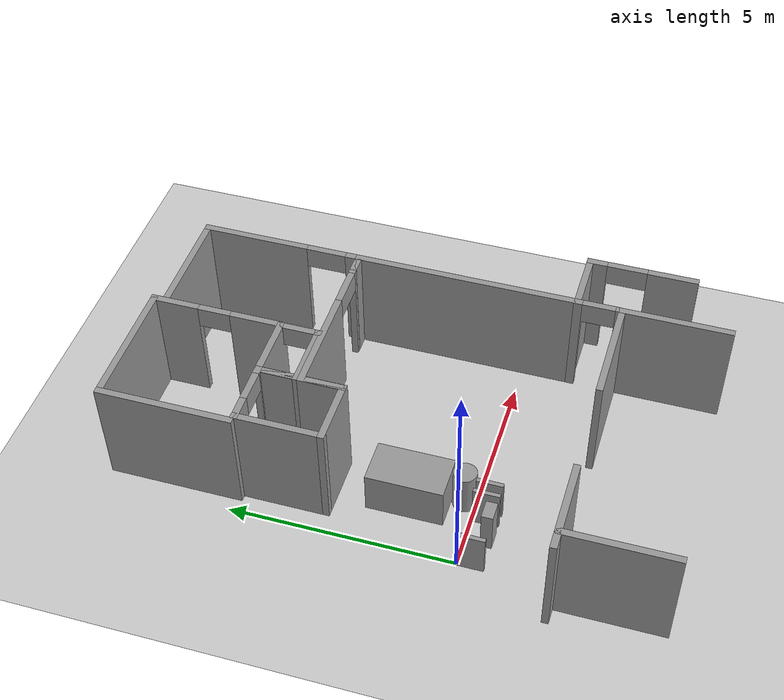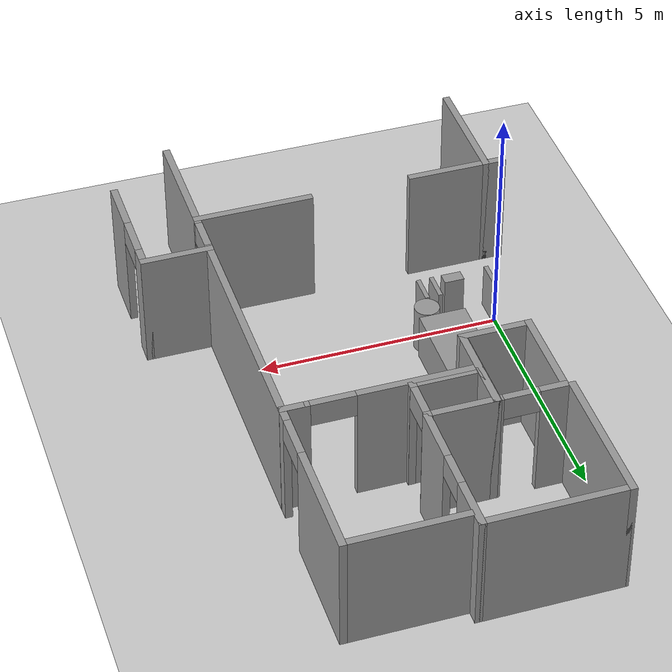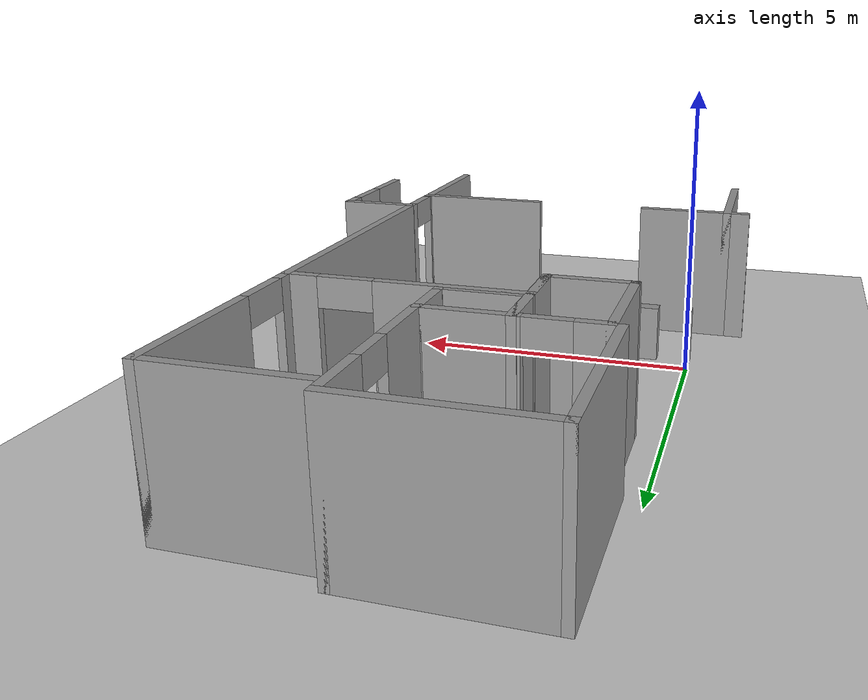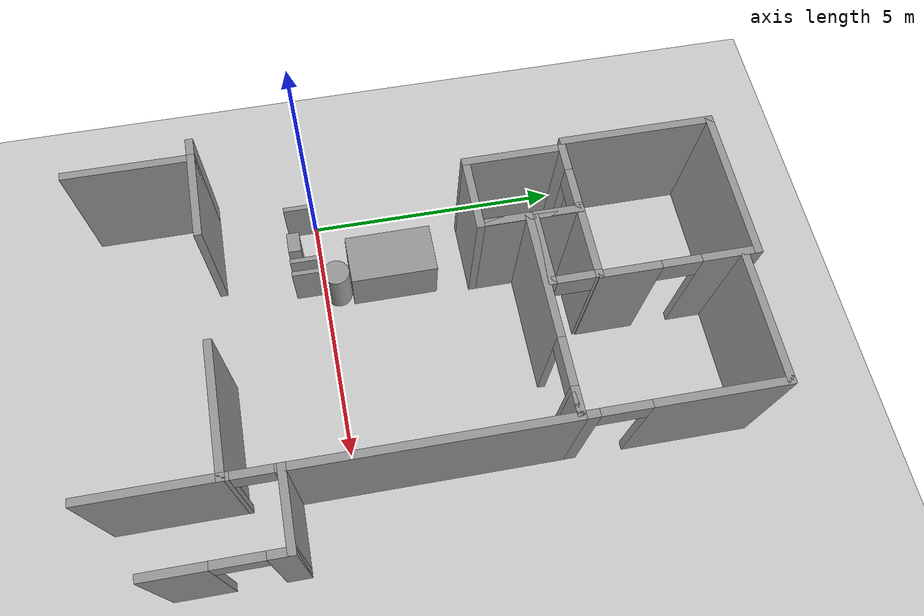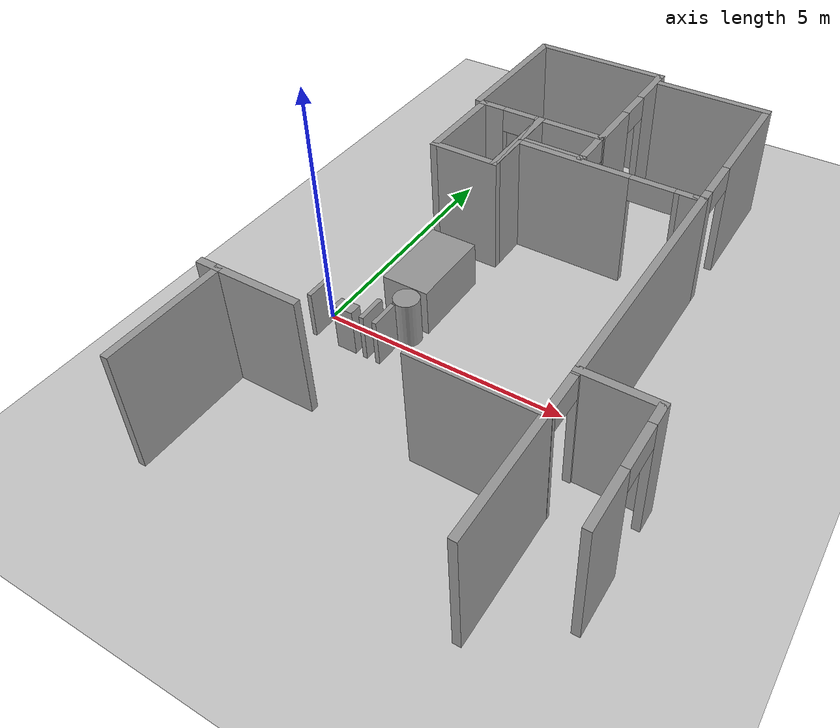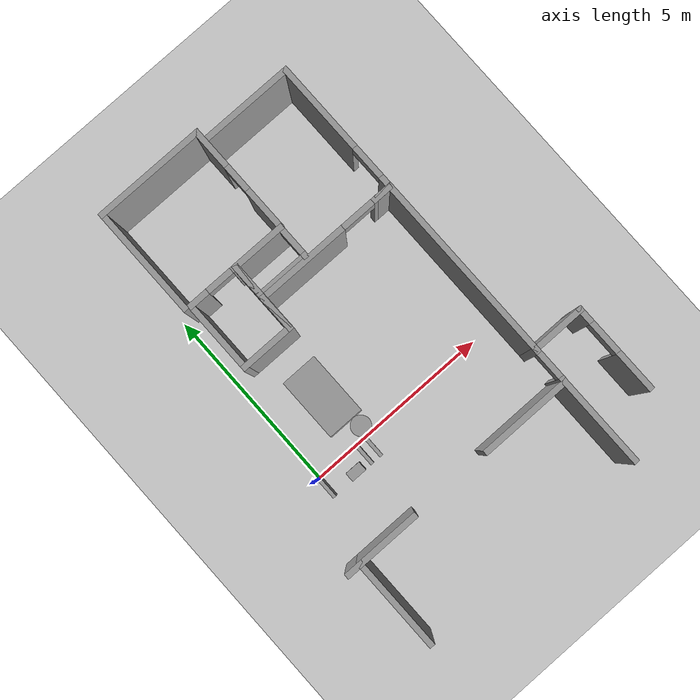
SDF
<sdf version="1.6">
 <world name="default">
  <model name="ground_plane">
   <static>1</static>
   <link name="link">
    <collision name="collision">
     <geometry><plane><normal>0 0 1</normal><size>100 100</size></plane></geometry>
     <surface><friction><ode><mu>100</mu><mu2>50</mu2></ode></friction></surface>
    </collision>
    <visual name="visual">
     <cast_shadows>0</cast_shadows>
     <geometry><plane><normal>0 0 1</normal><size>100 100</size></plane></geometry>
     <material>
      <script><uri>file://media/materials/scripts/gazebo.material</uri><name>Gazebo/Grey</name></script>
     </material>
    </visual>
   </link>
  </model>
  <model name="cma_parede_t">
   <pose>0.159955 -3.24016 0 0 -0 0</pose>
   <link name="Wall_15">
    <collision name="Wall_15_Collision">
     <geometry><box><size>2.5 0.15 2.5</size></box></geometry>
     <pose>0 0 1.25 0 -0 0</pose>
    </collision>
    <visual name="Wall_15_Visual">
     <pose>0 0 1.25 0 -0 0</pose>
     <geometry><box><size>2.5 0.15 2.5</size></box></geometry>
     <material>
      <script><uri>file://media/materials/scripts/gazebo.material</uri><name>Gazebo/Grey</name></script>
      <ambient>1 1 1 1</ambient>
     </material>
    </visual>
    <pose>-0.625 0 0 0 -0 1.5708</pose>
   </link>
   <link name="Wall_16">
    <collision name="Wall_16_Collision">
     <geometry><box><size>0.5 0.15 2.5</size></box></geometry>
     <pose>0 0 1.25 0 -0 0</pose>
    </collision>
    <visual name="Wall_16_Visual">
     <pose>0 0 1.25 0 -0 0</pose>
     <geometry><box><size>0.5 0.15 2.5</size></box></geometry>
     <material>
      <script><uri>file://media/materials/scripts/gazebo.material</uri><name>Gazebo/Grey</name></script>
      <ambient>1 1 1 1</ambient>
     </material>
    </visual>
    <pose>-0.8 1.175 0 0 -0 3.14159</pose>
   </link>
   <link name="Wall_18">
    <collision name="Wall_18_Collision">
     <geometry><box><size>1.75 0.15 2.5</size></box></geometry>
     <pose>0 0 1.25 0 -0 0</pose>
    </collision>
    <visual name="Wall_18_Visual">
     <pose>0 0 1.25 0 -0 0</pose>
     <geometry><box><size>1.75 0.15 2.5</size></box></geometry>
     <material>
      <script><uri>file://media/materials/scripts/gazebo.material</uri><name>Gazebo/Grey</name></script>
      <ambient>1 1 1 1</ambient>
     </material>
    </visual>
    <pose>0.175 1.175 0 0 -0 0</pose>
   </link>
   <static>1</static>
  </model>
  <model name="cma_L2">
   <pose>4.51683 -3.24587 0 0 -0 0</pose>
   <link name="Wall_10">
    <collision name="Wall_10_Collision">
     <geometry><box><size>2.5 0.15 2.5</size></box></geometry>
     <pose>0 0 1.25 0 -0 0</pose>
    </collision>
    <visual name="Wall_10_Visual">
     <pose>0 0 1.25 0 -0 0</pose>
     <geometry><box><size>2.5 0.15 2.5</size></box></geometry>
     <material>
      <script><uri>file://media/materials/scripts/gazebo.material</uri><name>Gazebo/Grey</name></script>
      <ambient>1 1 1 1</ambient>
     </material>
    </visual>
    <pose>1.175 0 0 0 0 -1.5708</pose>
   </link>
   <link name="Wall_9">
    <collision name="Wall_9_Collision">
     <geometry><box><size>2.5 0.15 2.5</size></box></geometry>
     <pose>0 0 1.25 0 -0 0</pose>
    </collision>
    <visual name="Wall_9_Visual">
     <pose>0 0 1.25 0 -0 0</pose>
     <geometry><box><size>2.5 0.15 2.5</size></box></geometry>
     <material>
      <script><uri>file://media/materials/scripts/gazebo.material</uri><name>Gazebo/Grey</name></script>
      <ambient>1 1 1 1</ambient>
     </material>
    </visual>
    <pose>0 1.175 0 0 -0 0</pose>
   </link>
   <static>1</static>
  </model>
  <model name="cma_L3">
   <pose>6.37221 -2.26022 0 0 -0 0</pose>
   <link name="Wall_12">
    <pose>-0.675 0.75 0 0 -0 1.5708</pose>
    <visual name="Wall_12_Visual_0">
     <pose>-0.46 0 1.25 0 -0 0</pose>
     <geometry><box><size>0.08 0.15 2.5</size></box></geometry>
     <material>
      <script><uri>file://media/materials/scripts/gazebo.material</uri><name>Gazebo/Grey</name></script>
      <ambient>1 1 1 1</ambient>
     </material>
    </visual>
    <collision name="Wall_12_Collision_0">
     <geometry><box><size>0.08 0.15 2.5</size></box></geometry>
     <pose>-0.46 0 1.25 0 -0 0</pose>
    </collision>
    <visual name="Wall_12_Visual_1">
     <pose>0.405 0 1.25 0 -0 0</pose>
     <geometry><box><size>0.19 0.15 2.5</size></box></geometry>
     <material>
      <script><uri>file://media/materials/scripts/gazebo.material</uri><name>Gazebo/Grey</name></script>
      <ambient>1 1 1 1</ambient>
     </material>
    </visual>
    <collision name="Wall_12_Collision_1">
     <geometry><box><size>0.19 0.15 2.5</size></box></geometry>
     <pose>0.405 0 1.25 0 -0 0</pose>
    </collision>
    <visual name="Wall_12_Visual_2">
     <pose>-0.055 0 2.25 0 -0 0</pose>
     <geometry><box><size>0.73 0.15 0.5</size></box></geometry>
     <material>
      <script><uri>file://media/materials/scripts/gazebo.material</uri><name>Gazebo/Grey</name></script>
      <ambient>1 1 1 1</ambient>
     </material>
    </visual>
    <collision name="Wall_12_Collision_2">
     <geometry><box><size>0.73 0.15 0.5</size></box></geometry>
     <pose>-0.055 0 2.25 0 -0 0</pose>
    </collision>
   </link>
   <link name="Wall_13">
    <collision name="Wall_13_Collision">
     <geometry><box><size>1.5 0.15 2.5</size></box></geometry>
     <pose>0 0 1.25 0 -0 0</pose>
    </collision>
    <visual name="Wall_13_Visual">
     <pose>0 0 1.25 0 -0 0</pose>
     <geometry><box><size>1.5 0.15 2.5</size></box></geometry>
     <material>
      <script><uri>file://media/materials/scripts/gazebo.material</uri><name>Gazebo/Grey</name></script>
      <ambient>1 1 1 1</ambient>
     </material>
    </visual>
    <pose>0 1.175 0 0 -0 0</pose>
   </link>
   <link name="Wall_14">
    <pose>0.675 0 0 0 0 -1.5708</pose>
    <visual name="Wall_14_Visual_0">
     <pose>-1.0175 0 1.25 0 -0 0</pose>
     <geometry><box><size>0.465 0.15 2.5</size></box></geometry>
     <material>
      <script><uri>file://media/materials/scripts/gazebo.material</uri><name>Gazebo/Grey</name></script>
      <ambient>1 1 1 1</ambient>
     </material>
    </visual>
    <collision name="Wall_14_Collision_0">
     <geometry><box><size>0.465 0.15 2.5</size></box></geometry>
     <pose>-1.0175 0 1.25 0 -0 0</pose>
    </collision>
    <visual name="Wall_14_Visual_1">
     <pose>0.6825 0 1.25 0 -0 0</pose>
     <geometry><box><size>1.135 0.15 2.5</size></box></geometry>
     <material>
      <script><uri>file://media/materials/scripts/gazebo.material</uri><name>Gazebo/Grey</name></script>
      <ambient>1 1 1 1</ambient>
     </material>
    </visual>
    <collision name="Wall_14_Collision_1">
     <geometry><box><size>1.135 0.15 2.5</size></box></geometry>
     <pose>0.6825 0 1.25 0 -0 0</pose>
    </collision>
    <visual name="Wall_14_Visual_2">
     <pose>-0.335 0 2.25 0 -0 0</pose>
     <geometry><box><size>0.9 0.15 0.5</size></box></geometry>
     <material>
      <script><uri>file://media/materials/scripts/gazebo.material</uri><name>Gazebo/Grey</name></script>
      <ambient>1 1 1 1</ambient>
     </material>
    </visual>
    <collision name="Wall_14_Collision_2">
     <geometry><box><size>0.9 0.15 0.5</size></box></geometry>
     <pose>-0.335 0 2.25 0 -0 0</pose>
    </collision>
   </link>
   <static>1</static>
  </model>
  <model name="cma_L5">
   <pose>3.77502 1.45512 0 0 -0 0</pose>
   <link name="Wall_0">
    <collision name="Wall_0_Collision">
     <geometry><box><size>1 0.15 2.5</size></box></geometry>
     <pose>0 0 1.25 0 -0 0</pose>
    </collision>
    <visual name="Wall_0_Visual">
     <pose>0 0 1.25 0 -0 0</pose>
     <geometry><box><size>1 0.15 2.5</size></box></geometry>
     <material>
      <script><uri>file://media/materials/scripts/gazebo.material</uri><name>Gazebo/Grey</name></script>
      <ambient>1 1 1 1</ambient>
     </material>
    </visual>
    <pose>-1.925 2 0 0 -0 1.5708</pose>
   </link>
   <link name="Wall_1">
    <pose>0 2.425 0 0 -0 0</pose>
    <visual name="Wall_1_Visual_0">
     <pose>-0.7525 0 1.25 0 -0 0</pose>
     <geometry><box><size>2.495 0.15 2.5</size></box></geometry>
     <material>
      <script><uri>file://media/materials/scripts/gazebo.material</uri><name>Gazebo/Grey</name></script>
      <ambient>1 1 1 1</ambient>
     </material>
    </visual>
    <collision name="Wall_1_Collision_0">
     <geometry><box><size>2.495 0.15 2.5</size></box></geometry>
     <pose>-0.7525 0 1.25 0 -0 0</pose>
    </collision>
    <visual name="Wall_1_Visual_1">
     <pose>1.6975 0 1.25 0 -0 0</pose>
     <geometry><box><size>0.605 0.15 2.5</size></box></geometry>
     <material>
      <script><uri>file://media/materials/scripts/gazebo.material</uri><name>Gazebo/Grey</name></script>
      <ambient>1 1 1 1</ambient>
     </material>
    </visual>
    <collision name="Wall_1_Collision_1">
     <geometry><box><size>0.605 0.15 2.5</size></box></geometry>
     <pose>1.6975 0 1.25 0 -0 0</pose>
    </collision>
    <visual name="Wall_1_Visual_2">
     <pose>0.945 0 2.25 0 -0 0</pose>
     <geometry><box><size>0.9 0.15 0.5</size></box></geometry>
     <material>
      <script><uri>file://media/materials/scripts/gazebo.material</uri><name>Gazebo/Grey</name></script>
      <ambient>1 1 1 1</ambient>
     </material>
    </visual>
    <collision name="Wall_1_Collision_2">
     <geometry><box><size>0.9 0.15 0.5</size></box></geometry>
     <pose>0.945 0 2.25 0 -0 0</pose>
    </collision>
   </link>
   <link name="Wall_3">
    <collision name="Wall_3_Collision">
     <geometry><box><size>5 0.15 2.5</size></box></geometry>
     <pose>0 0 1.25 0 -0 0</pose>
    </collision>
    <visual name="Wall_3_Visual">
     <pose>0 0 1.25 0 -0 0</pose>
     <geometry><box><size>5 0.15 2.5</size></box></geometry>
     <material>
      <script><uri>file://media/materials/scripts/gazebo.material</uri><name>Gazebo/Grey</name></script>
      <ambient>1 1 1 1</ambient>
     </material>
    </visual>
    <pose>1.925 0 0 0 0 -1.5708</pose>
   </link>
   <static>1</static>
  </model>
  <model name="cma_dispensa">
   <pose>2.52584 4.40119 0 0 -0 0</pose>
   <link name="Wall_5">
    <collision name="Wall_5_Collision">
     <geometry><box><size>1 0.15 2.5</size></box></geometry>
     <pose>0 0 1.25 0 -0 0</pose>
    </collision>
    <visual name="Wall_5_Visual">
     <pose>0 0 1.25 0 -0 0</pose>
     <geometry><box><size>1 0.15 2.5</size></box></geometry>
     <material>
      <script><uri>file://media/materials/scripts/gazebo.material</uri><name>Gazebo/Grey</name></script>
      <ambient>1 1 1 1</ambient>
     </material>
    </visual>
    <pose>-0.675 0 0 0 -0 1.5708</pose>
   </link>
   <link name="Wall_6">
    <collision name="Wall_6_Collision">
     <geometry><box><size>1.5 0.15 2.5</size></box></geometry>
     <pose>0 0 1.25 0 -0 0</pose>
    </collision>
    <visual name="Wall_6_Visual">
     <pose>0 0 1.25 0 -0 0</pose>
     <geometry><box><size>1.5 0.15 2.5</size></box></geometry>
     <material>
      <script><uri>file://media/materials/scripts/gazebo.material</uri><name>Gazebo/Grey</name></script>
      <ambient>1 1 1 1</ambient>
     </material>
    </visual>
    <pose>0 0.425 0 0 -0 0</pose>
   </link>
   <link name="Wall_7">
    <pose>0.675 0 0 0 0 -1.5708</pose>
    <visual name="Wall_7_Visual_0">
     <pose>-0.4275 0 1.25 0 -0 0</pose>
     <geometry><box><size>0.145 0.15 2.5</size></box></geometry>
     <material>
      <script><uri>file://media/materials/scripts/gazebo.material</uri><name>Gazebo/Grey</name></script>
      <ambient>1 1 1 1</ambient>
     </material>
    </visual>
    <collision name="Wall_7_Collision_0">
     <geometry><box><size>0.145 0.15 2.5</size></box></geometry>
     <pose>-0.4275 0 1.25 0 -0 0</pose>
    </collision>
    <visual name="Wall_7_Visual_1">
     <pose>0.4225 0 1.25 0 -0 0</pose>
     <geometry><box><size>0.155 0.15 2.5</size></box></geometry>
     <material>
      <script><uri>file://media/materials/scripts/gazebo.material</uri><name>Gazebo/Grey</name></script>
      <ambient>1 1 1 1</ambient>
     </material>
    </visual>
    <collision name="Wall_7_Collision_1">
     <geometry><box><size>0.155 0.15 2.5</size></box></geometry>
     <pose>0.4225 0 1.25 0 -0 0</pose>
    </collision>
    <visual name="Wall_7_Visual_2">
     <pose>-0.005 0 2.25 0 -0 0</pose>
     <geometry><box><size>0.7 0.15 0.5</size></box></geometry>
     <material>
      <script><uri>file://media/materials/scripts/gazebo.material</uri><name>Gazebo/Grey</name></script>
      <ambient>1 1 1 1</ambient>
     </material>
    </visual>
    <collision name="Wall_7_Collision_2">
     <geometry><box><size>0.7 0.15 0.5</size></box></geometry>
     <pose>-0.005 0 2.25 0 -0 0</pose>
    </collision>
   </link>
   <link name="Wall_8">
    <collision name="Wall_8_Collision">
     <geometry><box><size>1.5 0.15 2.5</size></box></geometry>
     <pose>0 0 1.25 0 -0 0</pose>
    </collision>
    <visual name="Wall_8_Visual">
     <pose>0 0 1.25 0 -0 0</pose>
     <geometry><box><size>1.5 0.15 2.5</size></box></geometry>
     <material>
      <script><uri>file://media/materials/scripts/gazebo.material</uri><name>Gazebo/Grey</name></script>
      <ambient>1 1 1 1</ambient>
     </material>
    </visual>
    <pose>0 -0.425 0 0 -0 3.14159</pose>
   </link>
   <static>1</static>
  </model>
  <model name="cma_banheiro_e">
   <pose>1.18358 3.89879 0 0 -0 0</pose>
   <link name="Wall_10">
    <collision name="Wall_10_Collision">
     <geometry><box><size>1.5 0.15 2.5</size></box></geometry>
     <pose>0 0 1.25 0 -0 0</pose>
    </collision>
    <visual name="Wall_10_Visual">
     <pose>0 0 1.25 0 -0 0</pose>
     <geometry><box><size>1.5 0.15 2.5</size></box></geometry>
     <material>
      <script><uri>file://media/materials/scripts/gazebo.material</uri><name>Gazebo/Grey</name></script>
      <ambient>1 1 1 1</ambient>
     </material>
    </visual>
    <pose>0 -0.925 0 0 -0 3.14159</pose>
   </link>
   <link name="Wall_11">
    <collision name="Wall_11_Collision">
     <geometry><box><size>2 0.15 2.5</size></box></geometry>
     <pose>0 0 1.25 0 -0 0</pose>
    </collision>
    <visual name="Wall_11_Visual">
     <pose>0 0 1.25 0 -0 0</pose>
     <geometry><box><size>2 0.15 2.5</size></box></geometry>
     <material>
      <script><uri>file://media/materials/scripts/gazebo.material</uri><name>Gazebo/Grey</name></script>
      <ambient>1 1 1 1</ambient>
     </material>
    </visual>
    <pose>-0.675 0 0 0 -0 1.5708</pose>
   </link>
   <link name="Wall_12">
    <pose>0 0.925 0 0 -0 0</pose>
    <visual name="Wall_12_Visual_0">
     <pose>-0.4625 0 1.25 0 -0 0</pose>
     <geometry><box><size>0.575 0.15 2.5</size></box></geometry>
     <material>
      <script><uri>file://media/materials/scripts/gazebo.material</uri><name>Gazebo/Grey</name></script>
      <ambient>1 1 1 1</ambient>
     </material>
    </visual>
    <collision name="Wall_12_Collision_0">
     <geometry><box><size>0.575 0.15 2.5</size></box></geometry>
     <pose>-0.4625 0 1.25 0 -0 0</pose>
    </collision>
    <visual name="Wall_12_Visual_1">
     <pose>0.6475 0 1.25 0 -0 0</pose>
     <geometry><box><size>0.205 0.15 2.5</size></box></geometry>
     <material>
      <script><uri>file://media/materials/scripts/gazebo.material</uri><name>Gazebo/Grey</name></script>
      <ambient>1 1 1 1</ambient>
     </material>
    </visual>
    <collision name="Wall_12_Collision_1">
     <geometry><box><size>0.205 0.15 2.5</size></box></geometry>
     <pose>0.6475 0 1.25 0 -0 0</pose>
    </collision>
    <visual name="Wall_12_Visual_2">
     <pose>0.185 0 2.25 0 -0 0</pose>
     <geometry><box><size>0.72 0.15 0.5</size></box></geometry>
     <material>
      <script><uri>file://media/materials/scripts/gazebo.material</uri><name>Gazebo/Grey</name></script>
      <ambient>1 1 1 1</ambient>
     </material>
    </visual>
    <collision name="Wall_12_Collision_2">
     <geometry><box><size>0.72 0.15 0.5</size></box></geometry>
     <pose>0.185 0 2.25 0 -0 0</pose>
    </collision>
   </link>
   <link name="Wall_13">
    <collision name="Wall_13_Collision">
     <geometry><box><size>2 0.15 2.5</size></box></geometry>
     <pose>0 0 1.25 0 -0 0</pose>
    </collision>
    <visual name="Wall_13_Visual">
     <pose>0 0 1.25 0 -0 0</pose>
     <geometry><box><size>2 0.15 2.5</size></box></geometry>
     <material>
      <script><uri>file://media/materials/scripts/gazebo.material</uri><name>Gazebo/Grey</name></script>
      <ambient>1 1 1 1</ambient>
     </material>
    </visual>
    <pose>0.675 0 0 0 0 -1.5708</pose>
   </link>
   <static>1</static>
  </model>
  <model name="cma_qe">
   <pose>1.79561 6.31228 0 0 -0 0</pose>
   <link name="Wall_15">
    <collision name="Wall_15_Collision">
     <geometry><box><size>3 0.15 2.5</size></box></geometry>
     <pose>0 0 1.25 0 -0 0</pose>
    </collision>
    <visual name="Wall_15_Visual">
     <pose>0 0 1.25 0 -0 0</pose>
     <geometry><box><size>3 0.15 2.5</size></box></geometry>
     <material>
      <script><uri>file://media/materials/scripts/gazebo.material</uri><name>Gazebo/Grey</name></script>
      <ambient>1 1 1 1</ambient>
     </material>
    </visual>
    <pose>-1.425 0 0 0 -0 1.5708</pose>
   </link>
   <link name="Wall_16">
    <collision name="Wall_16_Collision">
     <geometry><box><size>3 0.15 2.5</size></box></geometry>
     <pose>0 0 1.25 0 -0 0</pose>
    </collision>
    <visual name="Wall_16_Visual">
     <pose>0 0 1.25 0 -0 0</pose>
     <geometry><box><size>3 0.15 2.5</size></box></geometry>
     <material>
      <script><uri>file://media/materials/scripts/gazebo.material</uri><name>Gazebo/Grey</name></script>
      <ambient>1 1 1 1</ambient>
     </material>
    </visual>
    <pose>0 1.425 0 0 -0 0</pose>
   </link>
   <link name="Wall_17">
    <pose>1.425 0 0 0 0 -1.5708</pose>
    <visual name="Wall_17_Visual_0">
     <pose>-0.945 0 1.25 0 -0 0</pose>
     <geometry><box><size>1.11 0.15 2.5</size></box></geometry>
     <material>
      <script><uri>file://media/materials/scripts/gazebo.material</uri><name>Gazebo/Grey</name></script>
      <ambient>1 1 1 1</ambient>
     </material>
    </visual>
    <collision name="Wall_17_Collision_0">
     <geometry><box><size>1.11 0.15 2.5</size></box></geometry>
     <pose>-0.945 0 1.25 0 -0 0</pose>
    </collision>
    <visual name="Wall_17_Visual_1">
     <pose>0.92 0 1.25 0 -0 0</pose>
     <geometry><box><size>1.16 0.15 2.5</size></box></geometry>
     <material>
      <script><uri>file://media/materials/scripts/gazebo.material</uri><name>Gazebo/Grey</name></script>
      <ambient>1 1 1 1</ambient>
     </material>
    </visual>
    <collision name="Wall_17_Collision_1">
     <geometry><box><size>1.16 0.15 2.5</size></box></geometry>
     <pose>0.92 0 1.25 0 -0 0</pose>
    </collision>
    <visual name="Wall_17_Visual_2">
     <pose>-0.025 0 2.25 0 -0 0</pose>
     <geometry><box><size>0.73 0.15 0.5</size></box></geometry>
     <material>
      <script><uri>file://media/materials/scripts/gazebo.material</uri><name>Gazebo/Grey</name></script>
      <ambient>1 1 1 1</ambient>
     </material>
    </visual>
    <collision name="Wall_17_Collision_2">
     <geometry><box><size>0.73 0.15 0.5</size></box></geometry>
     <pose>-0.025 0 2.25 0 -0 0</pose>
    </collision>
   </link>
   <static>1</static>
  </model>
  <model name="cma_area2">
   <pose>4.52275 5.67862 0 0 -0 0</pose>
   <link name="Wall_23">
    <collision name="Wall_23_Collision">
     <geometry><box><size>2.5 0.15 2.5</size></box></geometry>
     <pose>0 0 1.25 0 -0 0</pose>
    </collision>
    <visual name="Wall_23_Visual">
     <pose>0 0 1.25 0 -0 0</pose>
     <geometry><box><size>2.5 0.15 2.5</size></box></geometry>
     <material>
      <script><uri>file://media/materials/scripts/gazebo.material</uri><name>Gazebo/Grey</name></script>
      <ambient>1 1 1 1</ambient>
     </material>
    </visual>
    <pose>0 1.8 0 0 -0 0</pose>
   </link>
   <link name="Wall_24">
    <pose>1.175 0 0 0 0 -1.5708</pose>
    <visual name="Wall_24_Visual_0">
     <pose>-0.6425 0 1.25 0 -0 0</pose>
     <geometry><box><size>2.465 0.15 2.5</size></box></geometry>
     <material>
      <script><uri>file://media/materials/scripts/gazebo.material</uri><name>Gazebo/Grey</name></script>
      <ambient>1 1 1 1</ambient>
     </material>
    </visual>
    <collision name="Wall_24_Collision_0">
     <geometry><box><size>2.465 0.15 2.5</size></box></geometry>
     <pose>-0.6425 0 1.25 0 -0 0</pose>
    </collision>
    <visual name="Wall_24_Visual_1">
     <pose>1.6825 0 1.25 0 -0 0</pose>
     <geometry><box><size>0.385 0.15 2.5</size></box></geometry>
     <material>
      <script><uri>file://media/materials/scripts/gazebo.material</uri><name>Gazebo/Grey</name></script>
      <ambient>1 1 1 1</ambient>
     </material>
    </visual>
    <collision name="Wall_24_Collision_1">
     <geometry><box><size>0.385 0.15 2.5</size></box></geometry>
     <pose>1.6825 0 1.25 0 -0 0</pose>
    </collision>
    <visual name="Wall_24_Visual_2">
     <pose>1.04 0 2.25 0 -0 0</pose>
     <geometry><box><size>0.9 0.15 0.5</size></box></geometry>
     <material>
      <script><uri>file://media/materials/scripts/gazebo.material</uri><name>Gazebo/Grey</name></script>
      <ambient>1 1 1 1</ambient>
     </material>
    </visual>
    <collision name="Wall_24_Collision_2">
     <geometry><box><size>0.9 0.15 0.5</size></box></geometry>
     <pose>1.04 0 2.25 0 -0 0</pose>
    </collision>
   </link>
   <link name="Wall_25">
    <collision name="Wall_25_Collision">
     <geometry><box><size>0.5 0.15 2.5</size></box></geometry>
     <pose>0 0 1.25 0 -0 0</pose>
    </collision>
    <visual name="Wall_25_Visual">
     <pose>0 0 1.25 0 -0 0</pose>
     <geometry><box><size>0.5 0.15 2.5</size></box></geometry>
     <material>
      <script><uri>file://media/materials/scripts/gazebo.material</uri><name>Gazebo/Grey</name></script>
      <ambient>1 1 1 1</ambient>
     </material>
    </visual>
    <pose>1 -1.8 0 0 -0 3.14159</pose>
   </link>
   <static>1</static>
  </model>
  <model name="cma_mesa_pc">
   <link name="link_0">
    <pose>-1.36533 -0.599866 0 0 -0 0</pose>
    <inertial>
     <mass>0.0551539</mass>
     <inertia>
      <ixx>0.00617776</ixx>
      <ixy>0</ixy>
      <ixz>0</ixz>
      <iyy>0.0046368</iyy>
      <iyz>0</iyz>
      <izz>0.00162222</izz>
     </inertia>
    </inertial>
    <visual name="visual">
     <geometry><box><size>0.094008 0.586626 1</size></box></geometry>
     <material>
      <lighting>1</lighting>
      <script><uri>file://media/materials/scripts/gazebo.material</uri><name>Gazebo/Grey</name></script>
      <ambient>0.3 0.3 0.3 1</ambient>
      <diffuse>0.7 0.7 0.7 1</diffuse>
      <specular>0.01 0.01 0.01 1</specular>
      <emissive>0 0 0 1</emissive>
     </material>
    </visual>
    <collision name="collision">
     <geometry><box><size>0.094008 0.586626 1</size></box></geometry>
     <surface>
      <friction>
       <ode><mu>1</mu><mu2>1</mu2><fdir1>0 0 0</fdir1><slip1>0</slip1><slip2>0</slip2></ode>
       <torsional>
        <coefficient>1</coefficient>
        <patch_radius>0</patch_radius>
        <surface_radius>0</surface_radius>
        <use_patch_radius>1</use_patch_radius>
        <ode><slip>0</slip></ode>
       </torsional>
      </friction>
      <bounce><restitution_coefficient>0</restitution_coefficient><threshold>1e+06</threshold></bounce>
      <contact>
       <collide_without_contact>0</collide_without_contact>
       <collide_without_contact_bitmask>1</collide_without_contact_bitmask>
       <collide_bitmask>1</collide_bitmask>
       <ode>
        <soft_cfm>0</soft_cfm>
        <soft_erp>0.2</soft_erp>
        <kp>1e+13</kp>
        <kd>1</kd>
        <max_vel>0.01</max_vel>
        <min_depth>0</min_depth>
       </ode>
       <bullet>
        <split_impulse>1</split_impulse>
        <split_impulse_penetration_threshold>-0.01</split_impulse_penetration_threshold>
        <soft_cfm>0</soft_cfm>
        <soft_erp>0.2</soft_erp>
        <kp>1e+13</kp>
        <kd>1</kd>
       </bullet>
      </contact>
     </surface>
    </collision>
   </link>
   <link name="link_0_clone">
    <pose>-0.180053 -0.603181 0 0 -0 0</pose>
    <inertial>
     <mass>0.0551539</mass>
     <inertia>
      <ixx>0.00617776</ixx>
      <ixy>0</ixy>
      <ixz>0</ixz>
      <iyy>0.0046368</iyy>
      <iyz>0</iyz>
      <izz>0.00162222</izz>
     </inertia>
    </inertial>
    <visual name="visual">
     <geometry><box><size>0.094008 0.586626 1</size></box></geometry>
     <material>
      <lighting>1</lighting>
      <script><uri>file://media/materials/scripts/gazebo.material</uri><name>Gazebo/Grey</name></script>
      <ambient>0.3 0.3 0.3 1</ambient>
      <diffuse>0.7 0.7 0.7 1</diffuse>
      <specular>0.01 0.01 0.01 1</specular>
      <emissive>0 0 0 1</emissive>
      <shader type="pixel"/>
     </material>
    </visual>
    <collision name="collision">
     <geometry><box><size>0.094008 0.586626 1</size></box></geometry>
     <surface>
      <friction>
       <ode><mu>1</mu><mu2>1</mu2><fdir1>0 0 0</fdir1><slip1>0</slip1><slip2>0</slip2></ode>
       <torsional>
        <coefficient>1</coefficient>
        <patch_radius>0</patch_radius>
        <surface_radius>0</surface_radius>
        <use_patch_radius>1</use_patch_radius>
        <ode><slip>0</slip></ode>
       </torsional>
      </friction>
      <bounce><restitution_coefficient>0</restitution_coefficient><threshold>1e+06</threshold></bounce>
      <contact>
       <collide_without_contact>0</collide_without_contact>
       <collide_without_contact_bitmask>1</collide_without_contact_bitmask>
       <collide_bitmask>1</collide_bitmask>
       <ode>
        <soft_cfm>0</soft_cfm>
        <soft_erp>0.2</soft_erp>
        <kp>1e+13</kp>
        <kd>1</kd>
        <max_vel>0.01</max_vel>
        <min_depth>0</min_depth>
       </ode>
       <bullet>
        <split_impulse>1</split_impulse>
        <split_impulse_penetration_threshold>-0.01</split_impulse_penetration_threshold>
        <soft_cfm>0</soft_cfm>
        <soft_erp>0.2</soft_erp>
        <kp>1e+13</kp>
        <kd>1</kd>
       </bullet>
      </contact>
     </surface>
    </collision>
   </link>
   <link name="link_0_clone_clone">
    <pose>0.101736 -0.601852 0 0 -0 0</pose>
    <inertial>
     <mass>0.0551539</mass>
     <inertia>
      <ixx>0.00617776</ixx>
      <ixy>0</ixy>
      <ixz>0</ixz>
      <iyy>0.0046368</iyy>
      <iyz>0</iyz>
      <izz>0.00162222</izz>
     </inertia>
    </inertial>
    <visual name="visual">
     <geometry><box><size>0.094008 0.586626 1</size></box></geometry>
     <material>
      <lighting>1</lighting>
      <script><uri>file://media/materials/scripts/gazebo.material</uri><name>Gazebo/Grey</name></script>
      <ambient>0.3 0.3 0.3 1</ambient>
      <diffuse>0.7 0.7 0.7 1</diffuse>
      <specular>0.01 0.01 0.01 1</specular>
      <emissive>0 0 0 1</emissive>
      <shader type="pixel"/>
     </material>
    </visual>
    <collision name="collision">
     <geometry><box><size>0.094008 0.586626 1</size></box></geometry>
     <surface>
      <friction>
       <ode><mu>1</mu><mu2>1</mu2><fdir1>0 0 0</fdir1><slip1>0</slip1><slip2>0</slip2></ode>
       <torsional>
        <coefficient>1</coefficient>
        <patch_radius>0</patch_radius>
        <surface_radius>0</surface_radius>
        <use_patch_radius>1</use_patch_radius>
        <ode><slip>0</slip></ode>
       </torsional>
      </friction>
      <bounce><restitution_coefficient>0</restitution_coefficient><threshold>1e+06</threshold></bounce>
      <contact>
       <collide_without_contact>0</collide_without_contact>
       <collide_without_contact_bitmask>1</collide_without_contact_bitmask>
       <collide_bitmask>1</collide_bitmask>
       <ode>
        <soft_cfm>0</soft_cfm>
        <soft_erp>0.2</soft_erp>
        <kp>1e+13</kp>
        <kd>1</kd>
        <max_vel>0.01</max_vel>
        <min_depth>0</min_depth>
       </ode>
       <bullet>
        <split_impulse>1</split_impulse>
        <split_impulse_penetration_threshold>-0.01</split_impulse_penetration_threshold>
        <soft_cfm>0</soft_cfm>
        <soft_erp>0.2</soft_erp>
        <kp>1e+13</kp>
        <kd>1</kd>
       </bullet>
      </contact>
     </surface>
    </collision>
   </link>
   <static>0</static>
   <pose>1.38346 0.30816 0.5 0 0 -0.00149</pose>
  </model>
  <model name="cma_picador_0">
   <link name="link_2">
    <pose>-0.7258 -1.69104 0 0 -0 0</pose>
    <inertial>
     <mass>0.104732</mass>
     <inertia>
      <ixx>0.00927906</ixx>
      <ixy>0</ixy>
      <ixz>0</ixz>
      <iyy>0.010243</iyy>
      <iyz>0</iyz>
      <izz>0.00206672</izz>
     </inertia>
    </inertial>
    <visual name="visual">
     <geometry><box><size>0.416688 0.25134 1</size></box></geometry>
     <material>
      <lighting>1</lighting>
      <script><uri>file://media/materials/scripts/gazebo.material</uri><name>Gazebo/Grey</name></script>
      <ambient>0.3 0.3 0.3 1</ambient>
      <diffuse>0.7 0.7 0.7 1</diffuse>
      <specular>0.01 0.01 0.01 1</specular>
      <emissive>0 0 0 1</emissive>
     </material>
    </visual>
    <collision name="collision">
     <geometry><box><size>0.416688 0.25134 1</size></box></geometry>
     <surface>
      <friction>
       <ode><mu>1</mu><mu2>1</mu2><fdir1>0 0 0</fdir1><slip1>0</slip1><slip2>0</slip2></ode>
       <torsional>
        <coefficient>1</coefficient>
        <patch_radius>0</patch_radius>
        <surface_radius>0</surface_radius>
        <use_patch_radius>1</use_patch_radius>
        <ode><slip>0</slip></ode>
       </torsional>
      </friction>
      <bounce><restitution_coefficient>0</restitution_coefficient><threshold>1e+06</threshold></bounce>
      <contact>
       <collide_without_contact>0</collide_without_contact>
       <collide_without_contact_bitmask>1</collide_without_contact_bitmask>
       <collide_bitmask>1</collide_bitmask>
       <ode>
        <soft_cfm>0</soft_cfm>
        <soft_erp>0.2</soft_erp>
        <kp>1e+13</kp>
        <kd>1</kd>
        <max_vel>0.01</max_vel>
        <min_depth>0</min_depth>
       </ode>
       <bullet>
        <split_impulse>1</split_impulse>
        <split_impulse_penetration_threshold>-0.01</split_impulse_penetration_threshold>
        <soft_cfm>0</soft_cfm>
        <soft_erp>0.2</soft_erp>
        <kp>1e+13</kp>
        <kd>1</kd>
       </bullet>
      </contact>
     </surface>
    </collision>
   </link>
   <static>0</static>
   <pose>1.51074 1.22805 0.500003 2e-06 1e-06 -8.4e-05</pose>
  </model>
  <model name="cma_cesto">
   <link name="link_1">
    <pose>-0.329659 -1.55494 0 0 -0 0</pose>
    <inertial>
     <mass>0.267897</mass>
     <inertia>
      <ixx>0.0268102</ixx>
      <ixy>0</ixy>
      <ixz>0</ixz>
      <iyy>0.0268102</iyy>
      <iyz>0</iyz>
      <izz>0.00897111</izz>
     </inertia>
    </inertial>
    <visual name="visual">
     <geometry><cylinder><radius>0.258792</radius><length>1</length></cylinder></geometry>
     <material>
      <lighting>1</lighting>
      <script><uri>file://media/materials/scripts/gazebo.material</uri><name>Gazebo/Grey</name></script>
      <ambient>0.3 0.3 0.3 1</ambient>
      <diffuse>0.7 0.7 0.7 1</diffuse>
      <specular>0.01 0.01 0.01 1</specular>
      <emissive>0 0 0 1</emissive>
     </material>
    </visual>
    <collision name="collision">
     <geometry><cylinder><radius>0.258792</radius><length>1</length></cylinder></geometry>
     <surface>
      <friction>
       <ode><mu>1</mu><mu2>1</mu2><fdir1>0 0 0</fdir1><slip1>0</slip1><slip2>0</slip2></ode>
       <torsional>
        <coefficient>1</coefficient>
        <patch_radius>0</patch_radius>
        <surface_radius>0</surface_radius>
        <use_patch_radius>1</use_patch_radius>
        <ode><slip>0</slip></ode>
       </torsional>
      </friction>
      <bounce><restitution_coefficient>0</restitution_coefficient><threshold>1e+06</threshold></bounce>
      <contact>
       <collide_without_contact>0</collide_without_contact>
       <collide_without_contact_bitmask>1</collide_without_contact_bitmask>
       <collide_bitmask>1</collide_bitmask>
       <ode>
        <soft_cfm>0</soft_cfm>
        <soft_erp>0.2</soft_erp>
        <kp>1e+13</kp>
        <kd>1</kd>
        <max_vel>0.01</max_vel>
        <min_depth>0</min_depth>
       </ode>
       <bullet>
        <split_impulse>1</split_impulse>
        <split_impulse_penetration_threshold>-0.01</split_impulse_penetration_threshold>
        <soft_cfm>0</soft_cfm>
        <soft_erp>0.2</soft_erp>
        <kp>1e+13</kp>
        <kd>1</kd>
       </bullet>
      </contact>
     </surface>
    </collision>
   </link>
   <static>0</static>
   <pose>1.94445 1.82075 0.499992 0 0 -0.013203</pose>
  </model>
  <model name="cma_sofa_2_lugares">
   <link name="link_0">
    <pose>-0.034013 -0.039828 0 0 -0 0</pose>
    <inertial>
     <mass>1.66071</mass>
     <inertia>
      <ixx>0.538183</ixx>
      <ixy>0</ixy>
      <ixz>0</ixz>
      <iyy>0.270519</iyy>
      <iyz>0</iyz>
      <izz>0.531915</izz>
     </inertia>
    </inertial>
    <visual name="visual">
     <geometry><box><size>0.977147 1.69968 1</size></box></geometry>
     <material>
      <lighting>1</lighting>
      <script><uri>file://media/materials/scripts/gazebo.material</uri><name>Gazebo/Grey</name></script>
      <ambient>0.3 0.3 0.3 1</ambient>
      <diffuse>0.7 0.7 0.7 1</diffuse>
      <specular>0.01 0.01 0.01 1</specular>
      <emissive>0 0 0 1</emissive>
     </material>
    </visual>
    <collision name="collision">
     <geometry><box><size>0.977147 1.69968 1</size></box></geometry>
     <surface>
      <friction>
       <ode><mu>1</mu><mu2>1</mu2><fdir1>0 0 0</fdir1><slip1>0</slip1><slip2>0</slip2></ode>
       <torsional>
        <coefficient>1</coefficient>
        <patch_radius>0</patch_radius>
        <surface_radius>0</surface_radius>
        <use_patch_radius>1</use_patch_radius>
        <ode><slip>0</slip></ode>
       </torsional>
      </friction>
      <bounce><restitution_coefficient>0</restitution_coefficient><threshold>1e+06</threshold></bounce>
      <contact>
       <collide_without_contact>0</collide_without_contact>
       <collide_without_contact_bitmask>1</collide_without_contact_bitmask>
       <collide_bitmask>1</collide_bitmask>
       <ode>
        <soft_cfm>0</soft_cfm>
        <soft_erp>0.2</soft_erp>
        <kp>1e+13</kp>
        <kd>1</kd>
        <max_vel>0.01</max_vel>
        <min_depth>0</min_depth>
       </ode>
       <bullet>
        <split_impulse>1</split_impulse>
        <split_impulse_penetration_threshold>-0.01</split_impulse_penetration_threshold>
        <soft_cfm>0</soft_cfm>
        <soft_erp>0.2</soft_erp>
        <kp>1e+13</kp>
        <kd>1</kd>
       </bullet>
      </contact>
     </surface>
    </collision>
   </link>
   <static>0</static>
   <pose>1.39811 1.433 0.499999 0 -2e-06 0.000464</pose>
  </model>
 </world>
</sdf>
